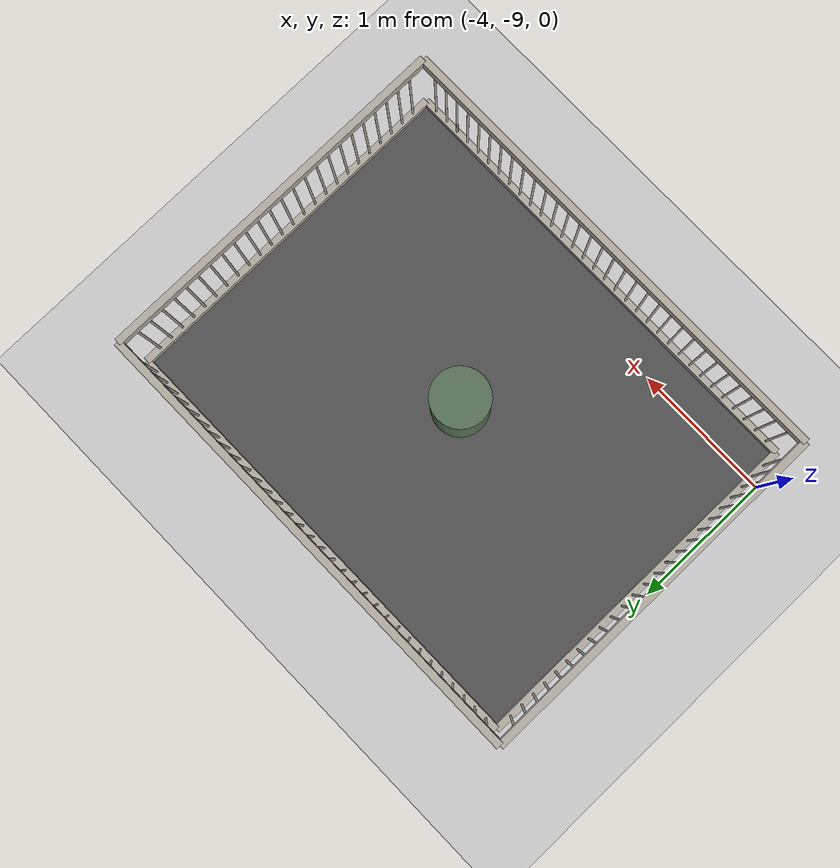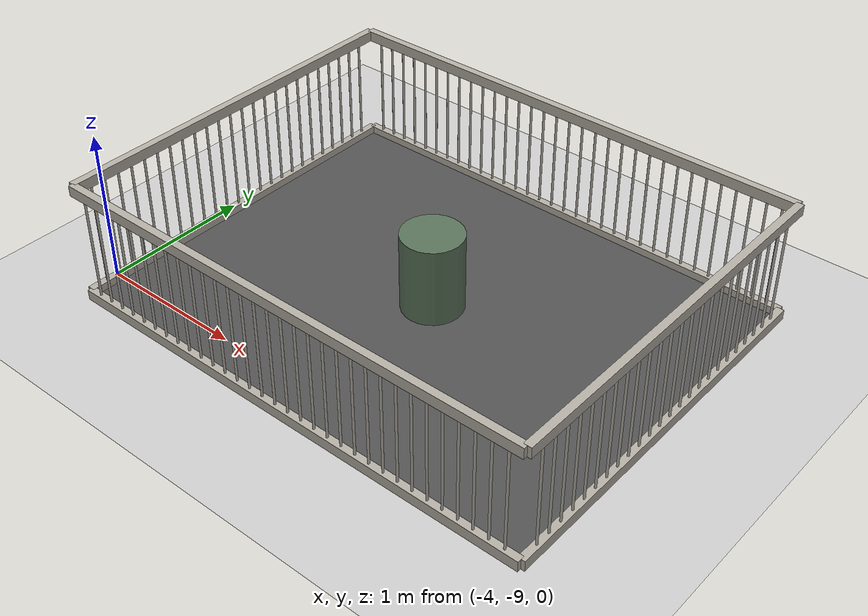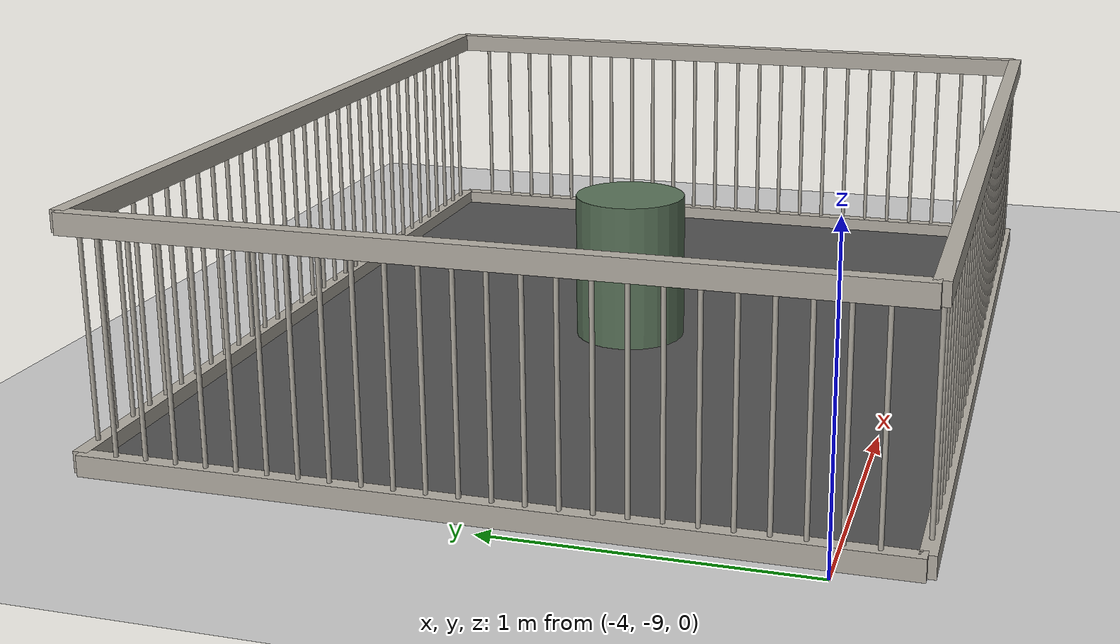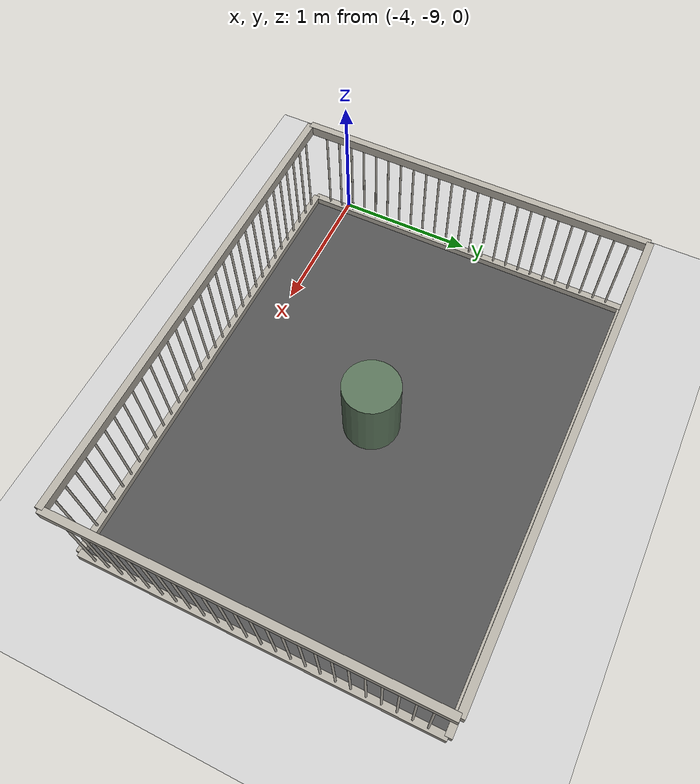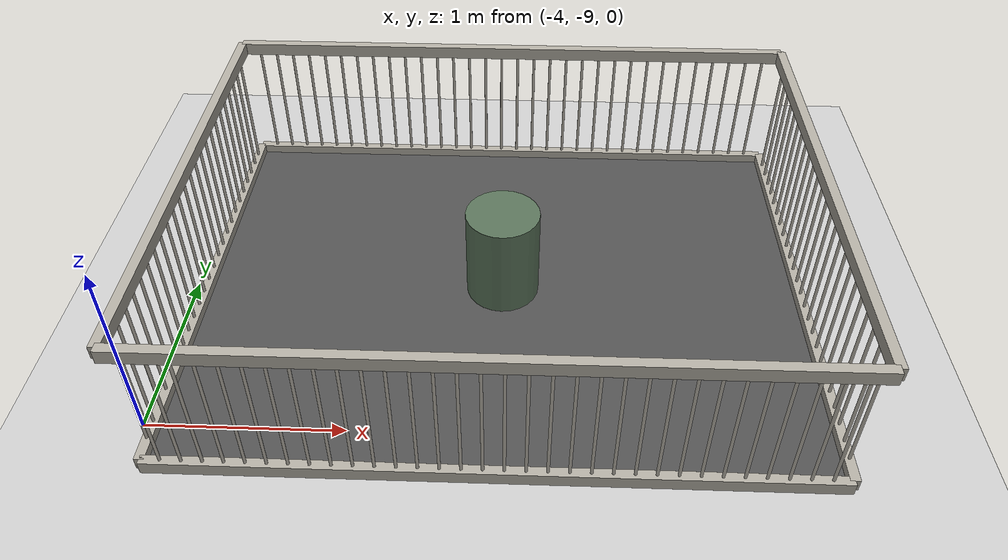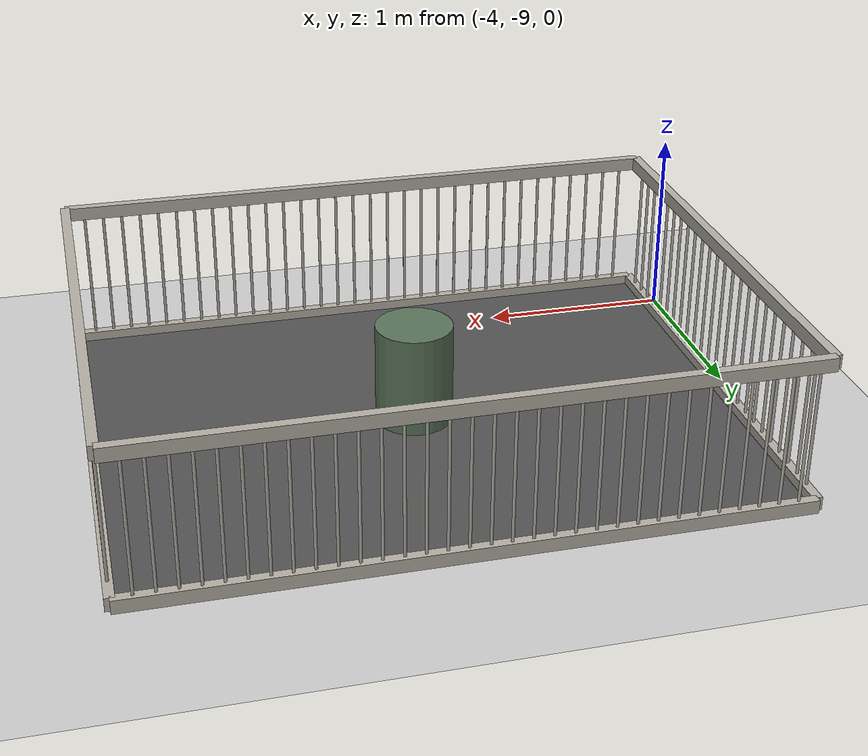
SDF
<sdf version="1.9">
 <world name="pig_pen_16units_world">
  <model name="ground_plane">
   <static>true</static>
   <link name="link">
    <collision name="collision">
     <geometry><plane><normal>0 0 1</normal><size>30 30</size></plane></geometry>
     <surface><friction><ode><mu>1.0</mu><mu2>1.0</mu2></ode></friction></surface>
    </collision>
    <visual name="visual">
     <geometry><plane><normal>0 0 1</normal><size>30 30</size></plane></geometry>
     <material>
      <ambient>0.8 0.8 0.8 1</ambient>
      <diffuse>0.8 0.8 0.8 1</diffuse>
      <specular>0.2 0.2 0.2 1</specular>
     </material>
    </visual>
   </link>
  </model>
  <model name="pen1">
   <pose>-2.275 -7.975 0 0 0 0</pose>
   <static>true</static>
   <link name="floor">
    <pose>0 0 0.01 0 0 0</pose>
    <collision name="collision"><geometry><box><size>3.30 2.55 0.02</size></box></geometry></collision>
    <visual name="visual">
     <geometry><box><size>3.30 2.55 0.02</size></box></geometry>
     <material>
      <ambient>0.25 0.25 0.25 1</ambient>
      <diffuse>0.32 0.32 0.32 1</diffuse>
      <specular>0.05 0.05 0.05 1</specular>
     </material>
    </visual>
   </link>
   <link name="left_wall">
    <pose>0 1.275 0.415 0 0 0</pose>
    <collision name="top_rail_col">
     <pose>0 0 0.38 0 0 0</pose>
     <geometry><box><size>3.30 0.05 0.07</size></box></geometry>
    </collision>
    <visual name="top_rail_vis">
     <pose>0 0 0.38 0 0 0</pose>
     <geometry><box><size>3.30 0.05 0.07</size></box></geometry>
     <material><ambient>0.70 0.68 0.64 1</ambient><diffuse>0.70 0.68 0.64 1</diffuse></material>
    </visual>
    <collision name="bottom_rail_col">
     <pose>0 0 -0.38 0 0 0</pose>
     <geometry><box><size>3.30 0.05 0.07</size></box></geometry>
    </collision>
    <visual name="bottom_rail_vis">
     <pose>0 0 -0.38 0 0 0</pose>
     <geometry><box><size>3.30 0.05 0.07</size></box></geometry>
     <material><ambient>0.70 0.68 0.64 1</ambient><diffuse>0.70 0.68 0.64 1</diffuse></material>
    </visual>
    <collision name="bar_01_col">
     <pose>-1.55 0 0 0 0 0</pose>
     <geometry><cylinder><radius>0.0075</radius><length>0.69</length></cylinder></geometry>
    </collision>
    <visual name="bar_01_vis">
     <pose>-1.55 0 0 0 0 0</pose>
     <geometry><cylinder><radius>0.0075</radius><length>0.69</length></cylinder></geometry>
     <material><ambient>0.70 0.68 0.64 1</ambient><diffuse>0.70 0.68 0.64 1</diffuse></material>
    </visual>
    <collision name="bar_02_col">
     <pose>-1.45 0 0 0 0 0</pose>
     <geometry><cylinder><radius>0.0075</radius><length>0.69</length></cylinder></geometry>
    </collision>
    <visual name="bar_02_vis">
     <pose>-1.45 0 0 0 0 0</pose>
     <geometry><cylinder><radius>0.0075</radius><length>0.69</length></cylinder></geometry>
     <material><ambient>0.70 0.68 0.64 1</ambient><diffuse>0.70 0.68 0.64 1</diffuse></material>
    </visual>
    <collision name="bar_03_col">
     <pose>-1.35 0 0 0 0 0</pose>
     <geometry><cylinder><radius>0.0075</radius><length>0.69</length></cylinder></geometry>
    </collision>
    <visual name="bar_03_vis">
     <pose>-1.35 0 0 0 0 0</pose>
     <geometry><cylinder><radius>0.0075</radius><length>0.69</length></cylinder></geometry>
     <material><ambient>0.70 0.68 0.64 1</ambient><diffuse>0.70 0.68 0.64 1</diffuse></material>
    </visual>
    <collision name="bar_04_col">
     <pose>-1.25 0 0 0 0 0</pose>
     <geometry><cylinder><radius>0.0075</radius><length>0.69</length></cylinder></geometry>
    </collision>
    <visual name="bar_04_vis">
     <pose>-1.25 0 0 0 0 0</pose>
     <geometry><cylinder><radius>0.0075</radius><length>0.69</length></cylinder></geometry>
     <material><ambient>0.70 0.68 0.64 1</ambient><diffuse>0.70 0.68 0.64 1</diffuse></material>
    </visual>
    <collision name="bar_05_col">
     <pose>-1.15 0 0 0 0 0</pose>
     <geometry><cylinder><radius>0.0075</radius><length>0.69</length></cylinder></geometry>
    </collision>
    <visual name="bar_05_vis">
     <pose>-1.15 0 0 0 0 0</pose>
     <geometry><cylinder><radius>0.0075</radius><length>0.69</length></cylinder></geometry>
     <material><ambient>0.70 0.68 0.64 1</ambient><diffuse>0.70 0.68 0.64 1</diffuse></material>
    </visual>
    <collision name="bar_06_col">
     <pose>-1.05 0 0 0 0 0</pose>
     <geometry><cylinder><radius>0.0075</radius><length>0.69</length></cylinder></geometry>
    </collision>
    <visual name="bar_06_vis">
     <pose>-1.05 0 0 0 0 0</pose>
     <geometry><cylinder><radius>0.0075</radius><length>0.69</length></cylinder></geometry>
     <material><ambient>0.70 0.68 0.64 1</ambient><diffuse>0.70 0.68 0.64 1</diffuse></material>
    </visual>
    <collision name="bar_07_col">
     <pose>-0.95 0 0 0 0 0</pose>
     <geometry><cylinder><radius>0.0075</radius><length>0.69</length></cylinder></geometry>
    </collision>
    <visual name="bar_07_vis">
     <pose>-0.95 0 0 0 0 0</pose>
     <geometry><cylinder><radius>0.0075</radius><length>0.69</length></cylinder></geometry>
     <material><ambient>0.70 0.68 0.64 1</ambient><diffuse>0.70 0.68 0.64 1</diffuse></material>
    </visual>
    <collision name="bar_08_col">
     <pose>-0.85 0 0 0 0 0</pose>
     <geometry><cylinder><radius>0.0075</radius><length>0.69</length></cylinder></geometry>
    </collision>
    <visual name="bar_08_vis">
     <pose>-0.85 0 0 0 0 0</pose>
     <geometry><cylinder><radius>0.0075</radius><length>0.69</length></cylinder></geometry>
     <material><ambient>0.70 0.68 0.64 1</ambient><diffuse>0.70 0.68 0.64 1</diffuse></material>
    </visual>
    <collision name="bar_09_col">
     <pose>-0.75 0 0 0 0 0</pose>
     <geometry><cylinder><radius>0.0075</radius><length>0.69</length></cylinder></geometry>
    </collision>
    <visual name="bar_09_vis">
     <pose>-0.75 0 0 0 0 0</pose>
     <geometry><cylinder><radius>0.0075</radius><length>0.69</length></cylinder></geometry>
     <material><ambient>0.70 0.68 0.64 1</ambient><diffuse>0.70 0.68 0.64 1</diffuse></material>
    </visual>
    <collision name="bar_10_col">
     <pose>-0.65 0 0 0 0 0</pose>
     <geometry><cylinder><radius>0.0075</radius><length>0.69</length></cylinder></geometry>
    </collision>
    <visual name="bar_10_vis">
     <pose>-0.65 0 0 0 0 0</pose>
     <geometry><cylinder><radius>0.0075</radius><length>0.69</length></cylinder></geometry>
     <material><ambient>0.70 0.68 0.64 1</ambient><diffuse>0.70 0.68 0.64 1</diffuse></material>
    </visual>
    <collision name="bar_11_col">
     <pose>-0.55 0 0 0 0 0</pose>
     <geometry><cylinder><radius>0.0075</radius><length>0.69</length></cylinder></geometry>
    </collision>
    <visual name="bar_11_vis">
     <pose>-0.55 0 0 0 0 0</pose>
     <geometry><cylinder><radius>0.0075</radius><length>0.69</length></cylinder></geometry>
     <material><ambient>0.70 0.68 0.64 1</ambient><diffuse>0.70 0.68 0.64 1</diffuse></material>
    </visual>
    <collision name="bar_12_col">
     <pose>-0.45 0 0 0 0 0</pose>
     <geometry><cylinder><radius>0.0075</radius><length>0.69</length></cylinder></geometry>
    </collision>
    <visual name="bar_12_vis">
     <pose>-0.45 0 0 0 0 0</pose>
     <geometry><cylinder><radius>0.0075</radius><length>0.69</length></cylinder></geometry>
     <material><ambient>0.70 0.68 0.64 1</ambient><diffuse>0.70 0.68 0.64 1</diffuse></material>
    </visual>
    <collision name="bar_13_col">
     <pose>-0.35 0 0 0 0 0</pose>
     <geometry><cylinder><radius>0.0075</radius><length>0.69</length></cylinder></geometry>
    </collision>
    <visual name="bar_13_vis">
     <pose>-0.35 0 0 0 0 0</pose>
     <geometry><cylinder><radius>0.0075</radius><length>0.69</length></cylinder></geometry>
     <material><ambient>0.70 0.68 0.64 1</ambient><diffuse>0.70 0.68 0.64 1</diffuse></material>
    </visual>
    <collision name="bar_14_col">
     <pose>-0.25 0 0 0 0 0</pose>
     <geometry><cylinder><radius>0.0075</radius><length>0.69</length></cylinder></geometry>
    </collision>
    <visual name="bar_14_vis">
     <pose>-0.25 0 0 0 0 0</pose>
     <geometry><cylinder><radius>0.0075</radius><length>0.69</length></cylinder></geometry>
     <material><ambient>0.70 0.68 0.64 1</ambient><diffuse>0.70 0.68 0.64 1</diffuse></material>
    </visual>
    <collision name="bar_15_col">
     <pose>-0.15 0 0 0 0 0</pose>
     <geometry><cylinder><radius>0.0075</radius><length>0.69</length></cylinder></geometry>
    </collision>
    <visual name="bar_15_vis">
     <pose>-0.15 0 0 0 0 0</pose>
     <geometry><cylinder><radius>0.0075</radius><length>0.69</length></cylinder></geometry>
     <material><ambient>0.70 0.68 0.64 1</ambient><diffuse>0.70 0.68 0.64 1</diffuse></material>
    </visual>
    <collision name="bar_16_col">
     <pose>-0.05 0 0 0 0 0</pose>
     <geometry><cylinder><radius>0.0075</radius><length>0.69</length></cylinder></geometry>
    </collision>
    <visual name="bar_16_vis">
     <pose>-0.05 0 0 0 0 0</pose>
     <geometry><cylinder><radius>0.0075</radius><length>0.69</length></cylinder></geometry>
     <material><ambient>0.70 0.68 0.64 1</ambient><diffuse>0.70 0.68 0.64 1</diffuse></material>
    </visual>
    <collision name="bar_17_col">
     <pose>0.05 0 0 0 0 0</pose>
     <geometry><cylinder><radius>0.0075</radius><length>0.69</length></cylinder></geometry>
    </collision>
    <visual name="bar_17_vis">
     <pose>0.05 0 0 0 0 0</pose>
     <geometry><cylinder><radius>0.0075</radius><length>0.69</length></cylinder></geometry>
     <material><ambient>0.70 0.68 0.64 1</ambient><diffuse>0.70 0.68 0.64 1</diffuse></material>
    </visual>
    <collision name="bar_18_col">
     <pose>0.15 0 0 0 0 0</pose>
     <geometry><cylinder><radius>0.0075</radius><length>0.69</length></cylinder></geometry>
    </collision>
    <visual name="bar_18_vis">
     <pose>0.15 0 0 0 0 0</pose>
     <geometry><cylinder><radius>0.0075</radius><length>0.69</length></cylinder></geometry>
     <material><ambient>0.70 0.68 0.64 1</ambient><diffuse>0.70 0.68 0.64 1</diffuse></material>
    </visual>
    <collision name="bar_19_col">
     <pose>0.25 0 0 0 0 0</pose>
     <geometry><cylinder><radius>0.0075</radius><length>0.69</length></cylinder></geometry>
    </collision>
    <visual name="bar_19_vis">
     <pose>0.25 0 0 0 0 0</pose>
     <geometry><cylinder><radius>0.0075</radius><length>0.69</length></cylinder></geometry>
     <material><ambient>0.70 0.68 0.64 1</ambient><diffuse>0.70 0.68 0.64 1</diffuse></material>
    </visual>
    <collision name="bar_20_col">
     <pose>0.35 0 0 0 0 0</pose>
     <geometry><cylinder><radius>0.0075</radius><length>0.69</length></cylinder></geometry>
    </collision>
    <visual name="bar_20_vis">
     <pose>0.35 0 0 0 0 0</pose>
     <geometry><cylinder><radius>0.0075</radius><length>0.69</length></cylinder></geometry>
     <material><ambient>0.70 0.68 0.64 1</ambient><diffuse>0.70 0.68 0.64 1</diffuse></material>
    </visual>
    <collision name="bar_21_col">
     <pose>0.45 0 0 0 0 0</pose>
     <geometry><cylinder><radius>0.0075</radius><length>0.69</length></cylinder></geometry>
    </collision>
    <visual name="bar_21_vis">
     <pose>0.45 0 0 0 0 0</pose>
     <geometry><cylinder><radius>0.0075</radius><length>0.69</length></cylinder></geometry>
     <material><ambient>0.70 0.68 0.64 1</ambient><diffuse>0.70 0.68 0.64 1</diffuse></material>
    </visual>
    <collision name="bar_22_col">
     <pose>0.55 0 0 0 0 0</pose>
     <geometry><cylinder><radius>0.0075</radius><length>0.69</length></cylinder></geometry>
    </collision>
    <visual name="bar_22_vis">
     <pose>0.55 0 0 0 0 0</pose>
     <geometry><cylinder><radius>0.0075</radius><length>0.69</length></cylinder></geometry>
     <material><ambient>0.70 0.68 0.64 1</ambient><diffuse>0.70 0.68 0.64 1</diffuse></material>
    </visual>
    <collision name="bar_23_col">
     <pose>0.65 0 0 0 0 0</pose>
     <geometry><cylinder><radius>0.0075</radius><length>0.69</length></cylinder></geometry>
    </collision>
    <visual name="bar_23_vis">
     <pose>0.65 0 0 0 0 0</pose>
     <geometry><cylinder><radius>0.0075</radius><length>0.69</length></cylinder></geometry>
     <material><ambient>0.70 0.68 0.64 1</ambient><diffuse>0.70 0.68 0.64 1</diffuse></material>
    </visual>
    <collision name="bar_24_col">
     <pose>0.75 0 0 0 0 0</pose>
     <geometry><cylinder><radius>0.0075</radius><length>0.69</length></cylinder></geometry>
    </collision>
    <visual name="bar_24_vis">
     <pose>0.75 0 0 0 0 0</pose>
     <geometry><cylinder><radius>0.0075</radius><length>0.69</length></cylinder></geometry>
     <material><ambient>0.70 0.68 0.64 1</ambient><diffuse>0.70 0.68 0.64 1</diffuse></material>
    </visual>
    <collision name="bar_25_col">
     <pose>0.85 0 0 0 0 0</pose>
     <geometry><cylinder><radius>0.0075</radius><length>0.69</length></cylinder></geometry>
    </collision>
    <visual name="bar_25_vis">
     <pose>0.85 0 0 0 0 0</pose>
     <geometry><cylinder><radius>0.0075</radius><length>0.69</length></cylinder></geometry>
     <material><ambient>0.70 0.68 0.64 1</ambient><diffuse>0.70 0.68 0.64 1</diffuse></material>
    </visual>
    <collision name="bar_26_col">
     <pose>0.95 0 0 0 0 0</pose>
     <geometry><cylinder><radius>0.0075</radius><length>0.69</length></cylinder></geometry>
    </collision>
    <visual name="bar_26_vis">
     <pose>0.95 0 0 0 0 0</pose>
     <geometry><cylinder><radius>0.0075</radius><length>0.69</length></cylinder></geometry>
     <material><ambient>0.70 0.68 0.64 1</ambient><diffuse>0.70 0.68 0.64 1</diffuse></material>
    </visual>
    <collision name="bar_27_col">
     <pose>1.05 0 0 0 0 0</pose>
     <geometry><cylinder><radius>0.0075</radius><length>0.69</length></cylinder></geometry>
    </collision>
    <visual name="bar_27_vis">
     <pose>1.05 0 0 0 0 0</pose>
     <geometry><cylinder><radius>0.0075</radius><length>0.69</length></cylinder></geometry>
     <material><ambient>0.70 0.68 0.64 1</ambient><diffuse>0.70 0.68 0.64 1</diffuse></material>
    </visual>
    <collision name="bar_28_col">
     <pose>1.15 0 0 0 0 0</pose>
     <geometry><cylinder><radius>0.0075</radius><length>0.69</length></cylinder></geometry>
    </collision>
    <visual name="bar_28_vis">
     <pose>1.15 0 0 0 0 0</pose>
     <geometry><cylinder><radius>0.0075</radius><length>0.69</length></cylinder></geometry>
     <material><ambient>0.70 0.68 0.64 1</ambient><diffuse>0.70 0.68 0.64 1</diffuse></material>
    </visual>
    <collision name="bar_29_col">
     <pose>1.25 0 0 0 0 0</pose>
     <geometry><cylinder><radius>0.0075</radius><length>0.69</length></cylinder></geometry>
    </collision>
    <visual name="bar_29_vis">
     <pose>1.25 0 0 0 0 0</pose>
     <geometry><cylinder><radius>0.0075</radius><length>0.69</length></cylinder></geometry>
     <material><ambient>0.70 0.68 0.64 1</ambient><diffuse>0.70 0.68 0.64 1</diffuse></material>
    </visual>
    <collision name="bar_30_col">
     <pose>1.35 0 0 0 0 0</pose>
     <geometry><cylinder><radius>0.0075</radius><length>0.69</length></cylinder></geometry>
    </collision>
    <visual name="bar_30_vis">
     <pose>1.35 0 0 0 0 0</pose>
     <geometry><cylinder><radius>0.0075</radius><length>0.69</length></cylinder></geometry>
     <material><ambient>0.70 0.68 0.64 1</ambient><diffuse>0.70 0.68 0.64 1</diffuse></material>
    </visual>
    <collision name="bar_31_col">
     <pose>1.45 0 0 0 0 0</pose>
     <geometry><cylinder><radius>0.0075</radius><length>0.69</length></cylinder></geometry>
    </collision>
    <visual name="bar_31_vis">
     <pose>1.45 0 0 0 0 0</pose>
     <geometry><cylinder><radius>0.0075</radius><length>0.69</length></cylinder></geometry>
     <material><ambient>0.70 0.68 0.64 1</ambient><diffuse>0.70 0.68 0.64 1</diffuse></material>
    </visual>
    <collision name="bar_32_col">
     <pose>1.55 0 0 0 0 0</pose>
     <geometry><cylinder><radius>0.0075</radius><length>0.69</length></cylinder></geometry>
    </collision>
    <visual name="bar_32_vis">
     <pose>1.55 0 0 0 0 0</pose>
     <geometry><cylinder><radius>0.0075</radius><length>0.69</length></cylinder></geometry>
     <material><ambient>0.70 0.68 0.64 1</ambient><diffuse>0.70 0.68 0.64 1</diffuse></material>
    </visual>
   </link>
   <link name="right_wall">
    <pose>0 -1.275 0.415 0 0 0</pose>
    <collision name="top_rail_col">
     <pose>0 0 0.38 0 0 0</pose>
     <geometry><box><size>3.30 0.05 0.07</size></box></geometry>
    </collision>
    <visual name="top_rail_vis">
     <pose>0 0 0.38 0 0 0</pose>
     <geometry><box><size>3.30 0.05 0.07</size></box></geometry>
     <material><ambient>0.70 0.68 0.64 1</ambient><diffuse>0.70 0.68 0.64 1</diffuse></material>
    </visual>
    <collision name="bottom_rail_col">
     <pose>0 0 -0.38 0 0 0</pose>
     <geometry><box><size>3.30 0.05 0.07</size></box></geometry>
    </collision>
    <visual name="bottom_rail_vis">
     <pose>0 0 -0.38 0 0 0</pose>
     <geometry><box><size>3.30 0.05 0.07</size></box></geometry>
     <material><ambient>0.70 0.68 0.64 1</ambient><diffuse>0.70 0.68 0.64 1</diffuse></material>
    </visual>
    <collision name="bar_01_col">
     <pose>-1.55 0 0 0 0 0</pose>
     <geometry><cylinder><radius>0.0075</radius><length>0.69</length></cylinder></geometry>
    </collision>
    <visual name="bar_01_vis">
     <pose>-1.55 0 0 0 0 0</pose>
     <geometry><cylinder><radius>0.0075</radius><length>0.69</length></cylinder></geometry>
     <material><ambient>0.70 0.68 0.64 1</ambient><diffuse>0.70 0.68 0.64 1</diffuse></material>
    </visual>
    <collision name="bar_02_col">
     <pose>-1.45 0 0 0 0 0</pose>
     <geometry><cylinder><radius>0.0075</radius><length>0.69</length></cylinder></geometry>
    </collision>
    <visual name="bar_02_vis">
     <pose>-1.45 0 0 0 0 0</pose>
     <geometry><cylinder><radius>0.0075</radius><length>0.69</length></cylinder></geometry>
     <material><ambient>0.70 0.68 0.64 1</ambient><diffuse>0.70 0.68 0.64 1</diffuse></material>
    </visual>
    <collision name="bar_03_col">
     <pose>-1.35 0 0 0 0 0</pose>
     <geometry><cylinder><radius>0.0075</radius><length>0.69</length></cylinder></geometry>
    </collision>
    <visual name="bar_03_vis">
     <pose>-1.35 0 0 0 0 0</pose>
     <geometry><cylinder><radius>0.0075</radius><length>0.69</length></cylinder></geometry>
     <material><ambient>0.70 0.68 0.64 1</ambient><diffuse>0.70 0.68 0.64 1</diffuse></material>
    </visual>
    <collision name="bar_04_col">
     <pose>-1.25 0 0 0 0 0</pose>
     <geometry><cylinder><radius>0.0075</radius><length>0.69</length></cylinder></geometry>
    </collision>
    <visual name="bar_04_vis">
     <pose>-1.25 0 0 0 0 0</pose>
     <geometry><cylinder><radius>0.0075</radius><length>0.69</length></cylinder></geometry>
     <material><ambient>0.70 0.68 0.64 1</ambient><diffuse>0.70 0.68 0.64 1</diffuse></material>
    </visual>
    <collision name="bar_05_col">
     <pose>-1.15 0 0 0 0 0</pose>
     <geometry><cylinder><radius>0.0075</radius><length>0.69</length></cylinder></geometry>
    </collision>
    <visual name="bar_05_vis">
     <pose>-1.15 0 0 0 0 0</pose>
     <geometry><cylinder><radius>0.0075</radius><length>0.69</length></cylinder></geometry>
     <material><ambient>0.70 0.68 0.64 1</ambient><diffuse>0.70 0.68 0.64 1</diffuse></material>
    </visual>
    <collision name="bar_06_col">
     <pose>-1.05 0 0 0 0 0</pose>
     <geometry><cylinder><radius>0.0075</radius><length>0.69</length></cylinder></geometry>
    </collision>
    <visual name="bar_06_vis">
     <pose>-1.05 0 0 0 0 0</pose>
     <geometry><cylinder><radius>0.0075</radius><length>0.69</length></cylinder></geometry>
     <material><ambient>0.70 0.68 0.64 1</ambient><diffuse>0.70 0.68 0.64 1</diffuse></material>
    </visual>
    <collision name="bar_07_col">
     <pose>-0.95 0 0 0 0 0</pose>
     <geometry><cylinder><radius>0.0075</radius><length>0.69</length></cylinder></geometry>
    </collision>
    <visual name="bar_07_vis">
     <pose>-0.95 0 0 0 0 0</pose>
     <geometry><cylinder><radius>0.0075</radius><length>0.69</length></cylinder></geometry>
     <material><ambient>0.70 0.68 0.64 1</ambient><diffuse>0.70 0.68 0.64 1</diffuse></material>
    </visual>
    <collision name="bar_08_col">
     <pose>-0.85 0 0 0 0 0</pose>
     <geometry><cylinder><radius>0.0075</radius><length>0.69</length></cylinder></geometry>
    </collision>
    <visual name="bar_08_vis">
     <pose>-0.85 0 0 0 0 0</pose>
     <geometry><cylinder><radius>0.0075</radius><length>0.69</length></cylinder></geometry>
     <material><ambient>0.70 0.68 0.64 1</ambient><diffuse>0.70 0.68 0.64 1</diffuse></material>
    </visual>
    <collision name="bar_09_col">
     <pose>-0.75 0 0 0 0 0</pose>
     <geometry><cylinder><radius>0.0075</radius><length>0.69</length></cylinder></geometry>
    </collision>
    <visual name="bar_09_vis">
     <pose>-0.75 0 0 0 0 0</pose>
     <geometry><cylinder><radius>0.0075</radius><length>0.69</length></cylinder></geometry>
     <material><ambient>0.70 0.68 0.64 1</ambient><diffuse>0.70 0.68 0.64 1</diffuse></material>
    </visual>
    <collision name="bar_10_col">
     <pose>-0.65 0 0 0 0 0</pose>
     <geometry><cylinder><radius>0.0075</radius><length>0.69</length></cylinder></geometry>
    </collision>
    <visual name="bar_10_vis">
     <pose>-0.65 0 0 0 0 0</pose>
     <geometry><cylinder><radius>0.0075</radius><length>0.69</length></cylinder></geometry>
     <material><ambient>0.70 0.68 0.64 1</ambient><diffuse>0.70 0.68 0.64 1</diffuse></material>
    </visual>
    <collision name="bar_11_col">
     <pose>-0.55 0 0 0 0 0</pose>
     <geometry><cylinder><radius>0.0075</radius><length>0.69</length></cylinder></geometry>
    </collision>
    <visual name="bar_11_vis">
     <pose>-0.55 0 0 0 0 0</pose>
     <geometry><cylinder><radius>0.0075</radius><length>0.69</length></cylinder></geometry>
     <material><ambient>0.70 0.68 0.64 1</ambient><diffuse>0.70 0.68 0.64 1</diffuse></material>
    </visual>
    <collision name="bar_12_col">
     <pose>-0.45 0 0 0 0 0</pose>
     <geometry><cylinder><radius>0.0075</radius><length>0.69</length></cylinder></geometry>
    </collision>
    <visual name="bar_12_vis">
     <pose>-0.45 0 0 0 0 0</pose>
     <geometry><cylinder><radius>0.0075</radius><length>0.69</length></cylinder></geometry>
     <material><ambient>0.70 0.68 0.64 1</ambient><diffuse>0.70 0.68 0.64 1</diffuse></material>
    </visual>
    <collision name="bar_13_col">
     <pose>-0.35 0 0 0 0 0</pose>
     <geometry><cylinder><radius>0.0075</radius><length>0.69</length></cylinder></geometry>
    </collision>
    <visual name="bar_13_vis">
     <pose>-0.35 0 0 0 0 0</pose>
     <geometry><cylinder><radius>0.0075</radius><length>0.69</length></cylinder></geometry>
     <material><ambient>0.70 0.68 0.64 1</ambient><diffuse>0.70 0.68 0.64 1</diffuse></material>
    </visual>
    <collision name="bar_14_col">
     <pose>-0.25 0 0 0 0 0</pose>
     <geometry><cylinder><radius>0.0075</radius><length>0.69</length></cylinder></geometry>
    </collision>
    <visual name="bar_14_vis">
     <pose>-0.25 0 0 0 0 0</pose>
     <geometry><cylinder><radius>0.0075</radius><length>0.69</length></cylinder></geometry>
     <material><ambient>0.70 0.68 0.64 1</ambient><diffuse>0.70 0.68 0.64 1</diffuse></material>
    </visual>
    <collision name="bar_15_col">
     <pose>-0.15 0 0 0 0 0</pose>
     <geometry><cylinder><radius>0.0075</radius><length>0.69</length></cylinder></geometry>
    </collision>
    <visual name="bar_15_vis">
     <pose>-0.15 0 0 0 0 0</pose>
     <geometry><cylinder><radius>0.0075</radius><length>0.69</length></cylinder></geometry>
     <material><ambient>0.70 0.68 0.64 1</ambient><diffuse>0.70 0.68 0.64 1</diffuse></material>
    </visual>
    <collision name="bar_16_col">
     <pose>-0.05 0 0 0 0 0</pose>
     <geometry><cylinder><radius>0.0075</radius><length>0.69</length></cylinder></geometry>
    </collision>
    <visual name="bar_16_vis">
     <pose>-0.05 0 0 0 0 0</pose>
     <geometry><cylinder><radius>0.0075</radius><length>0.69</length></cylinder></geometry>
     <material><ambient>0.70 0.68 0.64 1</ambient><diffuse>0.70 0.68 0.64 1</diffuse></material>
    </visual>
    <collision name="bar_17_col">
     <pose>0.05 0 0 0 0 0</pose>
     <geometry><cylinder><radius>0.0075</radius><length>0.69</length></cylinder></geometry>
    </collision>
    <visual name="bar_17_vis">
     <pose>0.05 0 0 0 0 0</pose>
     <geometry><cylinder><radius>0.0075</radius><length>0.69</length></cylinder></geometry>
     <material><ambient>0.70 0.68 0.64 1</ambient><diffuse>0.70 0.68 0.64 1</diffuse></material>
    </visual>
    <collision name="bar_18_col">
     <pose>0.15 0 0 0 0 0</pose>
     <geometry><cylinder><radius>0.0075</radius><length>0.69</length></cylinder></geometry>
    </collision>
    <visual name="bar_18_vis">
     <pose>0.15 0 0 0 0 0</pose>
     <geometry><cylinder><radius>0.0075</radius><length>0.69</length></cylinder></geometry>
     <material><ambient>0.70 0.68 0.64 1</ambient><diffuse>0.70 0.68 0.64 1</diffuse></material>
    </visual>
    <collision name="bar_19_col">
     <pose>0.25 0 0 0 0 0</pose>
     <geometry><cylinder><radius>0.0075</radius><length>0.69</length></cylinder></geometry>
    </collision>
    <visual name="bar_19_vis">
     <pose>0.25 0 0 0 0 0</pose>
     <geometry><cylinder><radius>0.0075</radius><length>0.69</length></cylinder></geometry>
     <material><ambient>0.70 0.68 0.64 1</ambient><diffuse>0.70 0.68 0.64 1</diffuse></material>
    </visual>
    <collision name="bar_20_col">
     <pose>0.35 0 0 0 0 0</pose>
     <geometry><cylinder><radius>0.0075</radius><length>0.69</length></cylinder></geometry>
    </collision>
    <visual name="bar_20_vis">
     <pose>0.35 0 0 0 0 0</pose>
     <geometry><cylinder><radius>0.0075</radius><length>0.69</length></cylinder></geometry>
     <material><ambient>0.70 0.68 0.64 1</ambient><diffuse>0.70 0.68 0.64 1</diffuse></material>
    </visual>
    <collision name="bar_21_col">
     <pose>0.45 0 0 0 0 0</pose>
     <geometry><cylinder><radius>0.0075</radius><length>0.69</length></cylinder></geometry>
    </collision>
    <visual name="bar_21_vis">
     <pose>0.45 0 0 0 0 0</pose>
     <geometry><cylinder><radius>0.0075</radius><length>0.69</length></cylinder></geometry>
     <material><ambient>0.70 0.68 0.64 1</ambient><diffuse>0.70 0.68 0.64 1</diffuse></material>
    </visual>
    <collision name="bar_22_col">
     <pose>0.55 0 0 0 0 0</pose>
     <geometry><cylinder><radius>0.0075</radius><length>0.69</length></cylinder></geometry>
    </collision>
    <visual name="bar_22_vis">
     <pose>0.55 0 0 0 0 0</pose>
     <geometry><cylinder><radius>0.0075</radius><length>0.69</length></cylinder></geometry>
     <material><ambient>0.70 0.68 0.64 1</ambient><diffuse>0.70 0.68 0.64 1</diffuse></material>
    </visual>
    <collision name="bar_23_col">
     <pose>0.65 0 0 0 0 0</pose>
     <geometry><cylinder><radius>0.0075</radius><length>0.69</length></cylinder></geometry>
    </collision>
    <visual name="bar_23_vis">
     <pose>0.65 0 0 0 0 0</pose>
     <geometry><cylinder><radius>0.0075</radius><length>0.69</length></cylinder></geometry>
     <material><ambient>0.70 0.68 0.64 1</ambient><diffuse>0.70 0.68 0.64 1</diffuse></material>
    </visual>
    <collision name="bar_24_col">
     <pose>0.75 0 0 0 0 0</pose>
     <geometry><cylinder><radius>0.0075</radius><length>0.69</length></cylinder></geometry>
    </collision>
    <visual name="bar_24_vis">
     <pose>0.75 0 0 0 0 0</pose>
     <geometry><cylinder><radius>0.0075</radius><length>0.69</length></cylinder></geometry>
     <material><ambient>0.70 0.68 0.64 1</ambient><diffuse>0.70 0.68 0.64 1</diffuse></material>
    </visual>
    <collision name="bar_25_col">
     <pose>0.85 0 0 0 0 0</pose>
     <geometry><cylinder><radius>0.0075</radius><length>0.69</length></cylinder></geometry>
    </collision>
    <visual name="bar_25_vis">
     <pose>0.85 0 0 0 0 0</pose>
     <geometry><cylinder><radius>0.0075</radius><length>0.69</length></cylinder></geometry>
     <material><ambient>0.70 0.68 0.64 1</ambient><diffuse>0.70 0.68 0.64 1</diffuse></material>
    </visual>
    <collision name="bar_26_col">
     <pose>0.95 0 0 0 0 0</pose>
     <geometry><cylinder><radius>0.0075</radius><length>0.69</length></cylinder></geometry>
    </collision>
    <visual name="bar_26_vis">
     <pose>0.95 0 0 0 0 0</pose>
     <geometry><cylinder><radius>0.0075</radius><length>0.69</length></cylinder></geometry>
     <material><ambient>0.70 0.68 0.64 1</ambient><diffuse>0.70 0.68 0.64 1</diffuse></material>
    </visual>
    <collision name="bar_27_col">
     <pose>1.05 0 0 0 0 0</pose>
     <geometry><cylinder><radius>0.0075</radius><length>0.69</length></cylinder></geometry>
    </collision>
    <visual name="bar_27_vis">
     <pose>1.05 0 0 0 0 0</pose>
     <geometry><cylinder><radius>0.0075</radius><length>0.69</length></cylinder></geometry>
     <material><ambient>0.70 0.68 0.64 1</ambient><diffuse>0.70 0.68 0.64 1</diffuse></material>
    </visual>
    <collision name="bar_28_col">
     <pose>1.15 0 0 0 0 0</pose>
     <geometry><cylinder><radius>0.0075</radius><length>0.69</length></cylinder></geometry>
    </collision>
    <visual name="bar_28_vis">
     <pose>1.15 0 0 0 0 0</pose>
     <geometry><cylinder><radius>0.0075</radius><length>0.69</length></cylinder></geometry>
     <material><ambient>0.70 0.68 0.64 1</ambient><diffuse>0.70 0.68 0.64 1</diffuse></material>
    </visual>
    <collision name="bar_29_col">
     <pose>1.25 0 0 0 0 0</pose>
     <geometry><cylinder><radius>0.0075</radius><length>0.69</length></cylinder></geometry>
    </collision>
    <visual name="bar_29_vis">
     <pose>1.25 0 0 0 0 0</pose>
     <geometry><cylinder><radius>0.0075</radius><length>0.69</length></cylinder></geometry>
     <material><ambient>0.70 0.68 0.64 1</ambient><diffuse>0.70 0.68 0.64 1</diffuse></material>
    </visual>
    <collision name="bar_30_col">
     <pose>1.35 0 0 0 0 0</pose>
     <geometry><cylinder><radius>0.0075</radius><length>0.69</length></cylinder></geometry>
    </collision>
    <visual name="bar_30_vis">
     <pose>1.35 0 0 0 0 0</pose>
     <geometry><cylinder><radius>0.0075</radius><length>0.69</length></cylinder></geometry>
     <material><ambient>0.70 0.68 0.64 1</ambient><diffuse>0.70 0.68 0.64 1</diffuse></material>
    </visual>
    <collision name="bar_31_col">
     <pose>1.45 0 0 0 0 0</pose>
     <geometry><cylinder><radius>0.0075</radius><length>0.69</length></cylinder></geometry>
    </collision>
    <visual name="bar_31_vis">
     <pose>1.45 0 0 0 0 0</pose>
     <geometry><cylinder><radius>0.0075</radius><length>0.69</length></cylinder></geometry>
     <material><ambient>0.70 0.68 0.64 1</ambient><diffuse>0.70 0.68 0.64 1</diffuse></material>
    </visual>
    <collision name="bar_32_col">
     <pose>1.55 0 0 0 0 0</pose>
     <geometry><cylinder><radius>0.0075</radius><length>0.69</length></cylinder></geometry>
    </collision>
    <visual name="bar_32_vis">
     <pose>1.55 0 0 0 0 0</pose>
     <geometry><cylinder><radius>0.0075</radius><length>0.69</length></cylinder></geometry>
     <material><ambient>0.70 0.68 0.64 1</ambient><diffuse>0.70 0.68 0.64 1</diffuse></material>
    </visual>
   </link>
   <link name="back_wall">
    <pose>1.65 0 0.415 0 0 0</pose>
    <collision name="top_rail_col">
     <pose>0 0 0.38 0 0 0</pose>
     <geometry><box><size>0.05 2.55 0.07</size></box></geometry>
    </collision>
    <visual name="top_rail_vis">
     <pose>0 0 0.38 0 0 0</pose>
     <geometry><box><size>0.05 2.55 0.07</size></box></geometry>
     <material><ambient>0.70 0.68 0.64 1</ambient><diffuse>0.70 0.68 0.64 1</diffuse></material>
    </visual>
    <collision name="bottom_rail_col">
     <pose>0 0 -0.38 0 0 0</pose>
     <geometry><box><size>0.05 2.55 0.07</size></box></geometry>
    </collision>
    <visual name="bottom_rail_vis">
     <pose>0 0 -0.38 0 0 0</pose>
     <geometry><box><size>0.05 2.55 0.07</size></box></geometry>
     <material><ambient>0.70 0.68 0.64 1</ambient><diffuse>0.70 0.68 0.64 1</diffuse></material>
    </visual>
    <collision name="bar_01_col">
     <pose>0 -1.15 0 0 0 0</pose>
     <geometry><cylinder><radius>0.0075</radius><length>0.69</length></cylinder></geometry>
    </collision>
    <visual name="bar_01_vis">
     <pose>0 -1.15 0 0 0 0</pose>
     <geometry><cylinder><radius>0.0075</radius><length>0.69</length></cylinder></geometry>
     <material><ambient>0.70 0.68 0.64 1</ambient><diffuse>0.70 0.68 0.64 1</diffuse></material>
    </visual>
    <collision name="bar_02_col">
     <pose>0 -1.05 0 0 0 0</pose>
     <geometry><cylinder><radius>0.0075</radius><length>0.69</length></cylinder></geometry>
    </collision>
    <visual name="bar_02_vis">
     <pose>0 -1.05 0 0 0 0</pose>
     <geometry><cylinder><radius>0.0075</radius><length>0.69</length></cylinder></geometry>
     <material><ambient>0.70 0.68 0.64 1</ambient><diffuse>0.70 0.68 0.64 1</diffuse></material>
    </visual>
    <collision name="bar_03_col">
     <pose>0 -0.95 0 0 0 0</pose>
     <geometry><cylinder><radius>0.0075</radius><length>0.69</length></cylinder></geometry>
    </collision>
    <visual name="bar_03_vis">
     <pose>0 -0.95 0 0 0 0</pose>
     <geometry><cylinder><radius>0.0075</radius><length>0.69</length></cylinder></geometry>
     <material><ambient>0.70 0.68 0.64 1</ambient><diffuse>0.70 0.68 0.64 1</diffuse></material>
    </visual>
    <collision name="bar_04_col">
     <pose>0 -0.85 0 0 0 0</pose>
     <geometry><cylinder><radius>0.0075</radius><length>0.69</length></cylinder></geometry>
    </collision>
    <visual name="bar_04_vis">
     <pose>0 -0.85 0 0 0 0</pose>
     <geometry><cylinder><radius>0.0075</radius><length>0.69</length></cylinder></geometry>
     <material><ambient>0.70 0.68 0.64 1</ambient><diffuse>0.70 0.68 0.64 1</diffuse></material>
    </visual>
    <collision name="bar_05_col">
     <pose>0 -0.75 0 0 0 0</pose>
     <geometry><cylinder><radius>0.0075</radius><length>0.69</length></cylinder></geometry>
    </collision>
    <visual name="bar_05_vis">
     <pose>0 -0.75 0 0 0 0</pose>
     <geometry><cylinder><radius>0.0075</radius><length>0.69</length></cylinder></geometry>
     <material><ambient>0.70 0.68 0.64 1</ambient><diffuse>0.70 0.68 0.64 1</diffuse></material>
    </visual>
    <collision name="bar_06_col">
     <pose>0 -0.65 0 0 0 0</pose>
     <geometry><cylinder><radius>0.0075</radius><length>0.69</length></cylinder></geometry>
    </collision>
    <visual name="bar_06_vis">
     <pose>0 -0.65 0 0 0 0</pose>
     <geometry><cylinder><radius>0.0075</radius><length>0.69</length></cylinder></geometry>
     <material><ambient>0.70 0.68 0.64 1</ambient><diffuse>0.70 0.68 0.64 1</diffuse></material>
    </visual>
    <collision name="bar_07_col">
     <pose>0 -0.55 0 0 0 0</pose>
     <geometry><cylinder><radius>0.0075</radius><length>0.69</length></cylinder></geometry>
    </collision>
    <visual name="bar_07_vis">
     <pose>0 -0.55 0 0 0 0</pose>
     <geometry><cylinder><radius>0.0075</radius><length>0.69</length></cylinder></geometry>
     <material><ambient>0.70 0.68 0.64 1</ambient><diffuse>0.70 0.68 0.64 1</diffuse></material>
    </visual>
    <collision name="bar_08_col">
     <pose>0 -0.45 0 0 0 0</pose>
     <geometry><cylinder><radius>0.0075</radius><length>0.69</length></cylinder></geometry>
    </collision>
    <visual name="bar_08_vis">
     <pose>0 -0.45 0 0 0 0</pose>
     <geometry><cylinder><radius>0.0075</radius><length>0.69</length></cylinder></geometry>
     <material><ambient>0.70 0.68 0.64 1</ambient><diffuse>0.70 0.68 0.64 1</diffuse></material>
    </visual>
    <collision name="bar_09_col">
     <pose>0 -0.35 0 0 0 0</pose>
     <geometry><cylinder><radius>0.0075</radius><length>0.69</length></cylinder></geometry>
    </collision>
    <visual name="bar_09_vis">
     <pose>0 -0.35 0 0 0 0</pose>
     <geometry><cylinder><radius>0.0075</radius><length>0.69</length></cylinder></geometry>
     <material><ambient>0.70 0.68 0.64 1</ambient><diffuse>0.70 0.68 0.64 1</diffuse></material>
    </visual>
    <collision name="bar_10_col">
     <pose>0 -0.25 0 0 0 0</pose>
     <geometry><cylinder><radius>0.0075</radius><length>0.69</length></cylinder></geometry>
    </collision>
    <visual name="bar_10_vis">
     <pose>0 -0.25 0 0 0 0</pose>
     <geometry><cylinder><radius>0.0075</radius><length>0.69</length></cylinder></geometry>
     <material><ambient>0.70 0.68 0.64 1</ambient><diffuse>0.70 0.68 0.64 1</diffuse></material>
    </visual>
    <collision name="bar_11_col">
     <pose>0 -0.15 0 0 0 0</pose>
     <geometry><cylinder><radius>0.0075</radius><length>0.69</length></cylinder></geometry>
    </collision>
    <visual name="bar_11_vis">
     <pose>0 -0.15 0 0 0 0</pose>
     <geometry><cylinder><radius>0.0075</radius><length>0.69</length></cylinder></geometry>
     <material><ambient>0.70 0.68 0.64 1</ambient><diffuse>0.70 0.68 0.64 1</diffuse></material>
    </visual>
    <collision name="bar_12_col">
     <pose>0 -0.05 0 0 0 0</pose>
     <geometry><cylinder><radius>0.0075</radius><length>0.69</length></cylinder></geometry>
    </collision>
    <visual name="bar_12_vis">
     <pose>0 -0.05 0 0 0 0</pose>
     <geometry><cylinder><radius>0.0075</radius><length>0.69</length></cylinder></geometry>
     <material><ambient>0.70 0.68 0.64 1</ambient><diffuse>0.70 0.68 0.64 1</diffuse></material>
    </visual>
    <collision name="bar_13_col">
     <pose>0 0.05 0 0 0 0</pose>
     <geometry><cylinder><radius>0.0075</radius><length>0.69</length></cylinder></geometry>
    </collision>
    <visual name="bar_13_vis">
     <pose>0 0.05 0 0 0 0</pose>
     <geometry><cylinder><radius>0.0075</radius><length>0.69</length></cylinder></geometry>
     <material><ambient>0.70 0.68 0.64 1</ambient><diffuse>0.70 0.68 0.64 1</diffuse></material>
    </visual>
    <collision name="bar_14_col">
     <pose>0 0.15 0 0 0 0</pose>
     <geometry><cylinder><radius>0.0075</radius><length>0.69</length></cylinder></geometry>
    </collision>
    <visual name="bar_14_vis">
     <pose>0 0.15 0 0 0 0</pose>
     <geometry><cylinder><radius>0.0075</radius><length>0.69</length></cylinder></geometry>
     <material><ambient>0.70 0.68 0.64 1</ambient><diffuse>0.70 0.68 0.64 1</diffuse></material>
    </visual>
    <collision name="bar_15_col">
     <pose>0 0.25 0 0 0 0</pose>
     <geometry><cylinder><radius>0.0075</radius><length>0.69</length></cylinder></geometry>
    </collision>
    <visual name="bar_15_vis">
     <pose>0 0.25 0 0 0 0</pose>
     <geometry><cylinder><radius>0.0075</radius><length>0.69</length></cylinder></geometry>
     <material><ambient>0.70 0.68 0.64 1</ambient><diffuse>0.70 0.68 0.64 1</diffuse></material>
    </visual>
    <collision name="bar_16_col">
     <pose>0 0.35 0 0 0 0</pose>
     <geometry><cylinder><radius>0.0075</radius><length>0.69</length></cylinder></geometry>
    </collision>
    <visual name="bar_16_vis">
     <pose>0 0.35 0 0 0 0</pose>
     <geometry><cylinder><radius>0.0075</radius><length>0.69</length></cylinder></geometry>
     <material><ambient>0.70 0.68 0.64 1</ambient><diffuse>0.70 0.68 0.64 1</diffuse></material>
    </visual>
    <collision name="bar_17_col">
     <pose>0 0.45 0 0 0 0</pose>
     <geometry><cylinder><radius>0.0075</radius><length>0.69</length></cylinder></geometry>
    </collision>
    <visual name="bar_17_vis">
     <pose>0 0.45 0 0 0 0</pose>
     <geometry><cylinder><radius>0.0075</radius><length>0.69</length></cylinder></geometry>
     <material><ambient>0.70 0.68 0.64 1</ambient><diffuse>0.70 0.68 0.64 1</diffuse></material>
    </visual>
    <collision name="bar_18_col">
     <pose>0 0.55 0 0 0 0</pose>
     <geometry><cylinder><radius>0.0075</radius><length>0.69</length></cylinder></geometry>
    </collision>
    <visual name="bar_18_vis">
     <pose>0 0.55 0 0 0 0</pose>
     <geometry><cylinder><radius>0.0075</radius><length>0.69</length></cylinder></geometry>
     <material><ambient>0.70 0.68 0.64 1</ambient><diffuse>0.70 0.68 0.64 1</diffuse></material>
    </visual>
    <collision name="bar_19_col">
     <pose>0 0.65 0 0 0 0</pose>
     <geometry><cylinder><radius>0.0075</radius><length>0.69</length></cylinder></geometry>
    </collision>
    <visual name="bar_19_vis">
     <pose>0 0.65 0 0 0 0</pose>
     <geometry><cylinder><radius>0.0075</radius><length>0.69</length></cylinder></geometry>
     <material><ambient>0.70 0.68 0.64 1</ambient><diffuse>0.70 0.68 0.64 1</diffuse></material>
    </visual>
    <collision name="bar_20_col">
     <pose>0 0.75 0 0 0 0</pose>
     <geometry><cylinder><radius>0.0075</radius><length>0.69</length></cylinder></geometry>
    </collision>
    <visual name="bar_20_vis">
     <pose>0 0.75 0 0 0 0</pose>
     <geometry><cylinder><radius>0.0075</radius><length>0.69</length></cylinder></geometry>
     <material><ambient>0.70 0.68 0.64 1</ambient><diffuse>0.70 0.68 0.64 1</diffuse></material>
    </visual>
    <collision name="bar_21_col">
     <pose>0 0.85 0 0 0 0</pose>
     <geometry><cylinder><radius>0.0075</radius><length>0.69</length></cylinder></geometry>
    </collision>
    <visual name="bar_21_vis">
     <pose>0 0.85 0 0 0 0</pose>
     <geometry><cylinder><radius>0.0075</radius><length>0.69</length></cylinder></geometry>
     <material><ambient>0.70 0.68 0.64 1</ambient><diffuse>0.70 0.68 0.64 1</diffuse></material>
    </visual>
    <collision name="bar_22_col">
     <pose>0 0.95 0 0 0 0</pose>
     <geometry><cylinder><radius>0.0075</radius><length>0.69</length></cylinder></geometry>
    </collision>
    <visual name="bar_22_vis">
     <pose>0 0.95 0 0 0 0</pose>
     <geometry><cylinder><radius>0.0075</radius><length>0.69</length></cylinder></geometry>
     <material><ambient>0.70 0.68 0.64 1</ambient><diffuse>0.70 0.68 0.64 1</diffuse></material>
    </visual>
    <collision name="bar_23_col">
     <pose>0 1.05 0 0 0 0</pose>
     <geometry><cylinder><radius>0.0075</radius><length>0.69</length></cylinder></geometry>
    </collision>
    <visual name="bar_23_vis">
     <pose>0 1.05 0 0 0 0</pose>
     <geometry><cylinder><radius>0.0075</radius><length>0.69</length></cylinder></geometry>
     <material><ambient>0.70 0.68 0.64 1</ambient><diffuse>0.70 0.68 0.64 1</diffuse></material>
    </visual>
    <collision name="bar_24_col">
     <pose>0 1.15 0 0 0 0</pose>
     <geometry><cylinder><radius>0.0075</radius><length>0.69</length></cylinder></geometry>
    </collision>
    <visual name="bar_24_vis">
     <pose>0 1.15 0 0 0 0</pose>
     <geometry><cylinder><radius>0.0075</radius><length>0.69</length></cylinder></geometry>
     <material><ambient>0.70 0.68 0.64 1</ambient><diffuse>0.70 0.68 0.64 1</diffuse></material>
    </visual>
   </link>
   <link name="front_wall">
    <pose>-1.65 0 0.415 0 0 0</pose>
    <collision name="top_rail_col">
     <pose>0 0 0.38 0 0 0</pose>
     <geometry><box><size>0.05 2.55 0.07</size></box></geometry>
    </collision>
    <visual name="top_rail_vis">
     <pose>0 0 0.38 0 0 0</pose>
     <geometry><box><size>0.05 2.55 0.07</size></box></geometry>
     <material><ambient>0.70 0.68 0.64 1</ambient><diffuse>0.70 0.68 0.64 1</diffuse></material>
    </visual>
    <collision name="bottom_rail_col">
     <pose>0 0 -0.38 0 0 0</pose>
     <geometry><box><size>0.05 2.55 0.07</size></box></geometry>
    </collision>
    <visual name="bottom_rail_vis">
     <pose>0 0 -0.38 0 0 0</pose>
     <geometry><box><size>0.05 2.55 0.07</size></box></geometry>
     <material><ambient>0.70 0.68 0.64 1</ambient><diffuse>0.70 0.68 0.64 1</diffuse></material>
    </visual>
    <collision name="bar_01_col">
     <pose>0 -1.15 0 0 0 0</pose>
     <geometry><cylinder><radius>0.0075</radius><length>0.69</length></cylinder></geometry>
    </collision>
    <visual name="bar_01_vis">
     <pose>0 -1.15 0 0 0 0</pose>
     <geometry><cylinder><radius>0.0075</radius><length>0.69</length></cylinder></geometry>
     <material><ambient>0.70 0.68 0.64 1</ambient><diffuse>0.70 0.68 0.64 1</diffuse></material>
    </visual>
    <collision name="bar_02_col">
     <pose>0 -1.05 0 0 0 0</pose>
     <geometry><cylinder><radius>0.0075</radius><length>0.69</length></cylinder></geometry>
    </collision>
    <visual name="bar_02_vis">
     <pose>0 -1.05 0 0 0 0</pose>
     <geometry><cylinder><radius>0.0075</radius><length>0.69</length></cylinder></geometry>
     <material><ambient>0.70 0.68 0.64 1</ambient><diffuse>0.70 0.68 0.64 1</diffuse></material>
    </visual>
    <collision name="bar_03_col">
     <pose>0 -0.95 0 0 0 0</pose>
     <geometry><cylinder><radius>0.0075</radius><length>0.69</length></cylinder></geometry>
    </collision>
    <visual name="bar_03_vis">
     <pose>0 -0.95 0 0 0 0</pose>
     <geometry><cylinder><radius>0.0075</radius><length>0.69</length></cylinder></geometry>
     <material><ambient>0.70 0.68 0.64 1</ambient><diffuse>0.70 0.68 0.64 1</diffuse></material>
    </visual>
    <collision name="bar_04_col">
     <pose>0 -0.85 0 0 0 0</pose>
     <geometry><cylinder><radius>0.0075</radius><length>0.69</length></cylinder></geometry>
    </collision>
    <visual name="bar_04_vis">
     <pose>0 -0.85 0 0 0 0</pose>
     <geometry><cylinder><radius>0.0075</radius><length>0.69</length></cylinder></geometry>
     <material><ambient>0.70 0.68 0.64 1</ambient><diffuse>0.70 0.68 0.64 1</diffuse></material>
    </visual>
    <collision name="bar_05_col">
     <pose>0 -0.75 0 0 0 0</pose>
     <geometry><cylinder><radius>0.0075</radius><length>0.69</length></cylinder></geometry>
    </collision>
    <visual name="bar_05_vis">
     <pose>0 -0.75 0 0 0 0</pose>
     <geometry><cylinder><radius>0.0075</radius><length>0.69</length></cylinder></geometry>
     <material><ambient>0.70 0.68 0.64 1</ambient><diffuse>0.70 0.68 0.64 1</diffuse></material>
    </visual>
    <collision name="bar_06_col">
     <pose>0 -0.65 0 0 0 0</pose>
     <geometry><cylinder><radius>0.0075</radius><length>0.69</length></cylinder></geometry>
    </collision>
    <visual name="bar_06_vis">
     <pose>0 -0.65 0 0 0 0</pose>
     <geometry><cylinder><radius>0.0075</radius><length>0.69</length></cylinder></geometry>
     <material><ambient>0.70 0.68 0.64 1</ambient><diffuse>0.70 0.68 0.64 1</diffuse></material>
    </visual>
    <collision name="bar_07_col">
     <pose>0 -0.55 0 0 0 0</pose>
     <geometry><cylinder><radius>0.0075</radius><length>0.69</length></cylinder></geometry>
    </collision>
    <visual name="bar_07_vis">
     <pose>0 -0.55 0 0 0 0</pose>
     <geometry><cylinder><radius>0.0075</radius><length>0.69</length></cylinder></geometry>
     <material><ambient>0.70 0.68 0.64 1</ambient><diffuse>0.70 0.68 0.64 1</diffuse></material>
    </visual>
    <collision name="bar_08_col">
     <pose>0 -0.45 0 0 0 0</pose>
     <geometry><cylinder><radius>0.0075</radius><length>0.69</length></cylinder></geometry>
    </collision>
    <visual name="bar_08_vis">
     <pose>0 -0.45 0 0 0 0</pose>
     <geometry><cylinder><radius>0.0075</radius><length>0.69</length></cylinder></geometry>
     <material><ambient>0.70 0.68 0.64 1</ambient><diffuse>0.70 0.68 0.64 1</diffuse></material>
    </visual>
    <collision name="bar_09_col">
     <pose>0 -0.35 0 0 0 0</pose>
     <geometry><cylinder><radius>0.0075</radius><length>0.69</length></cylinder></geometry>
    </collision>
    <visual name="bar_09_vis">
     <pose>0 -0.35 0 0 0 0</pose>
     <geometry><cylinder><radius>0.0075</radius><length>0.69</length></cylinder></geometry>
     <material><ambient>0.70 0.68 0.64 1</ambient><diffuse>0.70 0.68 0.64 1</diffuse></material>
    </visual>
    <collision name="bar_10_col">
     <pose>0 -0.25 0 0 0 0</pose>
     <geometry><cylinder><radius>0.0075</radius><length>0.69</length></cylinder></geometry>
    </collision>
    <visual name="bar_10_vis">
     <pose>0 -0.25 0 0 0 0</pose>
     <geometry><cylinder><radius>0.0075</radius><length>0.69</length></cylinder></geometry>
     <material><ambient>0.70 0.68 0.64 1</ambient><diffuse>0.70 0.68 0.64 1</diffuse></material>
    </visual>
    <collision name="bar_11_col">
     <pose>0 -0.15 0 0 0 0</pose>
     <geometry><cylinder><radius>0.0075</radius><length>0.69</length></cylinder></geometry>
    </collision>
    <visual name="bar_11_vis">
     <pose>0 -0.15 0 0 0 0</pose>
     <geometry><cylinder><radius>0.0075</radius><length>0.69</length></cylinder></geometry>
     <material><ambient>0.70 0.68 0.64 1</ambient><diffuse>0.70 0.68 0.64 1</diffuse></material>
    </visual>
    <collision name="bar_12_col">
     <pose>0 -0.05 0 0 0 0</pose>
     <geometry><cylinder><radius>0.0075</radius><length>0.69</length></cylinder></geometry>
    </collision>
    <visual name="bar_12_vis">
     <pose>0 -0.05 0 0 0 0</pose>
     <geometry><cylinder><radius>0.0075</radius><length>0.69</length></cylinder></geometry>
     <material><ambient>0.70 0.68 0.64 1</ambient><diffuse>0.70 0.68 0.64 1</diffuse></material>
    </visual>
    <collision name="bar_13_col">
     <pose>0 0.05 0 0 0 0</pose>
     <geometry><cylinder><radius>0.0075</radius><length>0.69</length></cylinder></geometry>
    </collision>
    <visual name="bar_13_vis">
     <pose>0 0.05 0 0 0 0</pose>
     <geometry><cylinder><radius>0.0075</radius><length>0.69</length></cylinder></geometry>
     <material><ambient>0.70 0.68 0.64 1</ambient><diffuse>0.70 0.68 0.64 1</diffuse></material>
    </visual>
    <collision name="bar_14_col">
     <pose>0 0.15 0 0 0 0</pose>
     <geometry><cylinder><radius>0.0075</radius><length>0.69</length></cylinder></geometry>
    </collision>
    <visual name="bar_14_vis">
     <pose>0 0.15 0 0 0 0</pose>
     <geometry><cylinder><radius>0.0075</radius><length>0.69</length></cylinder></geometry>
     <material><ambient>0.70 0.68 0.64 1</ambient><diffuse>0.70 0.68 0.64 1</diffuse></material>
    </visual>
    <collision name="bar_15_col">
     <pose>0 0.25 0 0 0 0</pose>
     <geometry><cylinder><radius>0.0075</radius><length>0.69</length></cylinder></geometry>
    </collision>
    <visual name="bar_15_vis">
     <pose>0 0.25 0 0 0 0</pose>
     <geometry><cylinder><radius>0.0075</radius><length>0.69</length></cylinder></geometry>
     <material><ambient>0.70 0.68 0.64 1</ambient><diffuse>0.70 0.68 0.64 1</diffuse></material>
    </visual>
    <collision name="bar_16_col">
     <pose>0 0.35 0 0 0 0</pose>
     <geometry><cylinder><radius>0.0075</radius><length>0.69</length></cylinder></geometry>
    </collision>
    <visual name="bar_16_vis">
     <pose>0 0.35 0 0 0 0</pose>
     <geometry><cylinder><radius>0.0075</radius><length>0.69</length></cylinder></geometry>
     <material><ambient>0.70 0.68 0.64 1</ambient><diffuse>0.70 0.68 0.64 1</diffuse></material>
    </visual>
    <collision name="bar_17_col">
     <pose>0 0.45 0 0 0 0</pose>
     <geometry><cylinder><radius>0.0075</radius><length>0.69</length></cylinder></geometry>
    </collision>
    <visual name="bar_17_vis">
     <pose>0 0.45 0 0 0 0</pose>
     <geometry><cylinder><radius>0.0075</radius><length>0.69</length></cylinder></geometry>
     <material><ambient>0.70 0.68 0.64 1</ambient><diffuse>0.70 0.68 0.64 1</diffuse></material>
    </visual>
    <collision name="bar_18_col">
     <pose>0 0.55 0 0 0 0</pose>
     <geometry><cylinder><radius>0.0075</radius><length>0.69</length></cylinder></geometry>
    </collision>
    <visual name="bar_18_vis">
     <pose>0 0.55 0 0 0 0</pose>
     <geometry><cylinder><radius>0.0075</radius><length>0.69</length></cylinder></geometry>
     <material><ambient>0.70 0.68 0.64 1</ambient><diffuse>0.70 0.68 0.64 1</diffuse></material>
    </visual>
    <collision name="bar_19_col">
     <pose>0 0.65 0 0 0 0</pose>
     <geometry><cylinder><radius>0.0075</radius><length>0.69</length></cylinder></geometry>
    </collision>
    <visual name="bar_19_vis">
     <pose>0 0.65 0 0 0 0</pose>
     <geometry><cylinder><radius>0.0075</radius><length>0.69</length></cylinder></geometry>
     <material><ambient>0.70 0.68 0.64 1</ambient><diffuse>0.70 0.68 0.64 1</diffuse></material>
    </visual>
    <collision name="bar_20_col">
     <pose>0 0.75 0 0 0 0</pose>
     <geometry><cylinder><radius>0.0075</radius><length>0.69</length></cylinder></geometry>
    </collision>
    <visual name="bar_20_vis">
     <pose>0 0.75 0 0 0 0</pose>
     <geometry><cylinder><radius>0.0075</radius><length>0.69</length></cylinder></geometry>
     <material><ambient>0.70 0.68 0.64 1</ambient><diffuse>0.70 0.68 0.64 1</diffuse></material>
    </visual>
    <collision name="bar_21_col">
     <pose>0 0.85 0 0 0 0</pose>
     <geometry><cylinder><radius>0.0075</radius><length>0.69</length></cylinder></geometry>
    </collision>
    <visual name="bar_21_vis">
     <pose>0 0.85 0 0 0 0</pose>
     <geometry><cylinder><radius>0.0075</radius><length>0.69</length></cylinder></geometry>
     <material><ambient>0.70 0.68 0.64 1</ambient><diffuse>0.70 0.68 0.64 1</diffuse></material>
    </visual>
    <collision name="bar_22_col">
     <pose>0 0.95 0 0 0 0</pose>
     <geometry><cylinder><radius>0.0075</radius><length>0.69</length></cylinder></geometry>
    </collision>
    <visual name="bar_22_vis">
     <pose>0 0.95 0 0 0 0</pose>
     <geometry><cylinder><radius>0.0075</radius><length>0.69</length></cylinder></geometry>
     <material><ambient>0.70 0.68 0.64 1</ambient><diffuse>0.70 0.68 0.64 1</diffuse></material>
    </visual>
    <collision name="bar_23_col">
     <pose>0 1.05 0 0 0 0</pose>
     <geometry><cylinder><radius>0.0075</radius><length>0.69</length></cylinder></geometry>
    </collision>
    <visual name="bar_23_vis">
     <pose>0 1.05 0 0 0 0</pose>
     <geometry><cylinder><radius>0.0075</radius><length>0.69</length></cylinder></geometry>
     <material><ambient>0.70 0.68 0.64 1</ambient><diffuse>0.70 0.68 0.64 1</diffuse></material>
    </visual>
    <collision name="bar_24_col">
     <pose>0 1.15 0 0 0 0</pose>
     <geometry><cylinder><radius>0.0075</radius><length>0.69</length></cylinder></geometry>
    </collision>
    <visual name="bar_24_vis">
     <pose>0 1.15 0 0 0 0</pose>
     <geometry><cylinder><radius>0.0075</radius><length>0.69</length></cylinder></geometry>
     <material><ambient>0.70 0.68 0.64 1</ambient><diffuse>0.70 0.68 0.64 1</diffuse></material>
    </visual>
   </link>
   <link name="feeder">
    <pose>0 0 0.275 0 0 0</pose>
    <collision name="collision">
     <geometry><cylinder><radius>0.20</radius><length>0.55</length></cylinder></geometry>
    </collision>
    <visual name="visual">
     <geometry><cylinder><radius>0.20</radius><length>0.55</length></cylinder></geometry>
     <material><ambient>0.35 0.45 0.35 1</ambient><diffuse>0.35 0.45 0.35 1</diffuse></material>
    </visual>
   </link>
  </model>
 </world>
</sdf>
